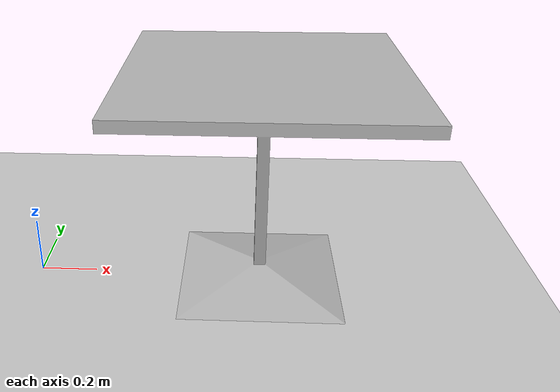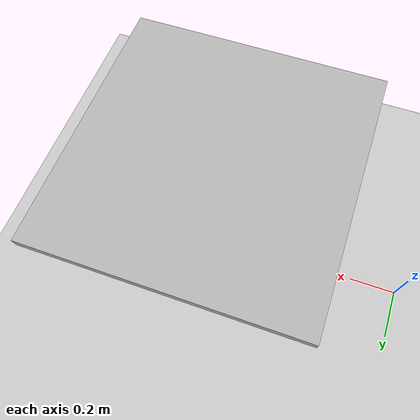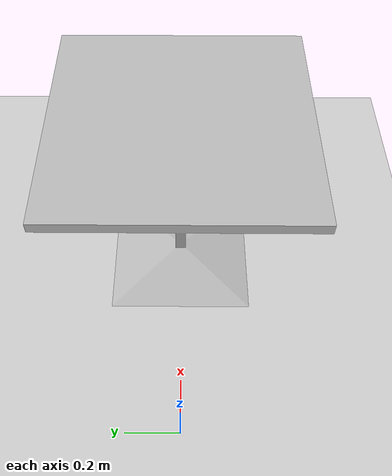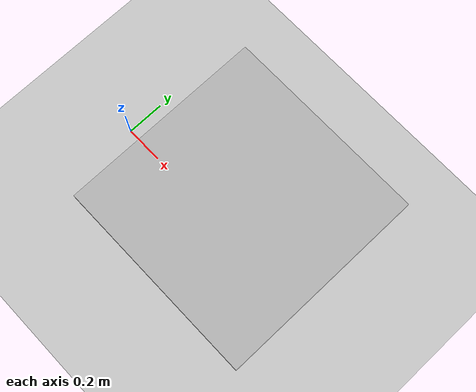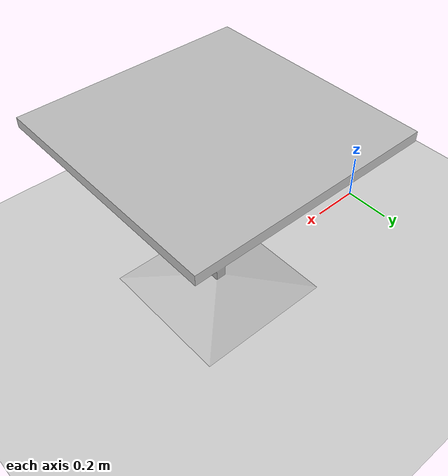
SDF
<sdf version="1.7">
 <world name="default">
  <light name="sun" type="directional">
   <pose>0 0 10 0 -0 0</pose>
   <diffuse>0.8 0.8 0.8 1</diffuse>
   <specular>0.2 0.2 0.2 1</specular>
   <attenuation>
    <range>1000</range>
    <constant>0.9</constant>
    <linear>0.01</linear>
    <quadratic>0.001</quadratic>
   </attenuation>
   <direction>-0.5 0.1 -0.9</direction>
   <spot><inner_angle>0</inner_angle><outer_angle>0</outer_angle><falloff>0</falloff></spot>
  </light>
  <model name="ground_plane">
   <static>1</static>
   <link name="link">
    <collision name="collision">
     <geometry><plane><normal>0 0 1</normal><size>100 100</size></plane></geometry>
     <surface>
      <contact><collide_bitmask>65535</collide_bitmask></contact>
      <friction><ode><mu>100</mu><mu2>50</mu2></ode></friction>
     </surface>
    </collision>
    <visual name="visual">
     <cast_shadows>0</cast_shadows>
     <geometry><plane><normal>0 0 1</normal><size>100 100</size></plane></geometry>
     <material>
      <script><uri>file://media/materials/scripts/gazebo.material</uri><name>Gazebo/Grey</name></script>
     </material>
    </visual>
   </link>
  </model>
  <gravity>0 0 -9.8</gravity>
  <magnetic_field>6e-06 2.3e-05 -4.2e-05</magnetic_field>
  <atmosphere type="adiabatic"/>
  <physics type="ode">
   <max_step_size>0.001</max_step_size>
   <real_time_factor>1</real_time_factor>
   <real_time_update_rate>1000</real_time_update_rate>
  </physics>
  <scene><ambient>0.4 0.4 0.4 1</ambient><background>0.7 0.7 0.7 1</background><shadows>1</shadows></scene>
  <spherical_coordinates>
   <surface_model>EARTH_WGS84</surface_model>
   <latitude_deg>0</latitude_deg>
   <longitude_deg>0</longitude_deg>
   <elevation>0</elevation>
   <heading_deg>0</heading_deg>
  </spherical_coordinates>
  <light name="user_spot_light_0" type="spot">
   <pose>0.060891 -0.04632 1 0 -0 0</pose>
   <diffuse>0.5 0.5 0.5 1</diffuse>
   <specular>0.1 0.1 0.1 1</specular>
   <direction>0 0 -1</direction>
   <attenuation>
    <range>20</range>
    <constant>0.5</constant>
    <linear>0.01</linear>
    <quadratic>0.001</quadratic>
   </attenuation>
   <cast_shadows>0</cast_shadows>
   <spot><inner_angle>0.6</inner_angle><outer_angle>1</outer_angle><falloff>1</falloff></spot>
  </light>
  <model name="cafe_table">
   <static>1</static>
   <link name="link">
    <collision name="surface">
     <pose>0 0 0.755 0 -0 0</pose>
     <geometry><box><size>0.913 0.913 0.04</size></box></geometry>
    </collision>
    <collision name="column">
     <pose>0 0 0.37 0 -0 0</pose>
     <geometry><box><size>0.042 0.042 0.74</size></box></geometry>
    </collision>
    <collision name="base">
     <pose>0 0 0.02 0 -0 0</pose>
     <geometry><box><size>0.56 0.56 0.04</size></box></geometry>
    </collision>
    <visual name="visual">
     <geometry><mesh><uri>model://cafe_table/meshes/cafe_table.dae</uri></mesh></geometry>
    </visual>
   </link>
   <pose>0.799819 0.003693 0 0 -0 0</pose>
  </model>
 </world>
</sdf>
